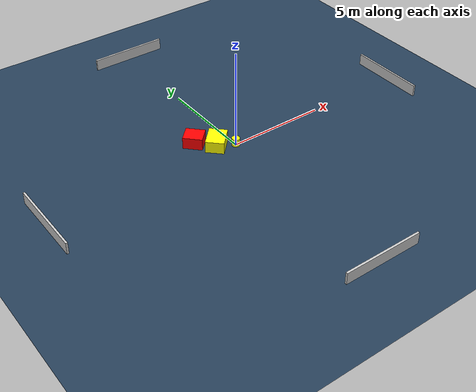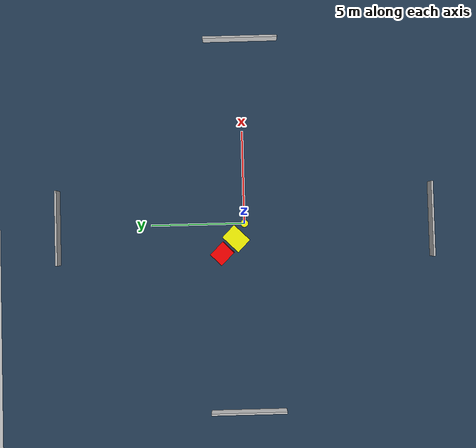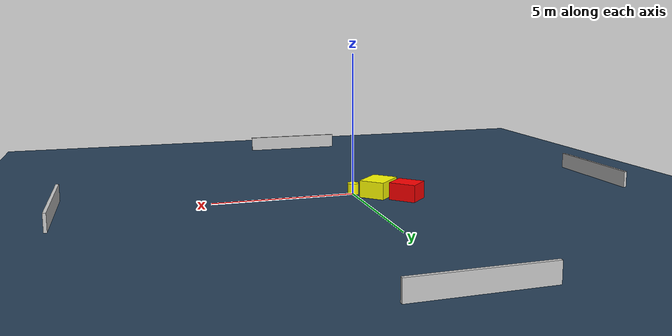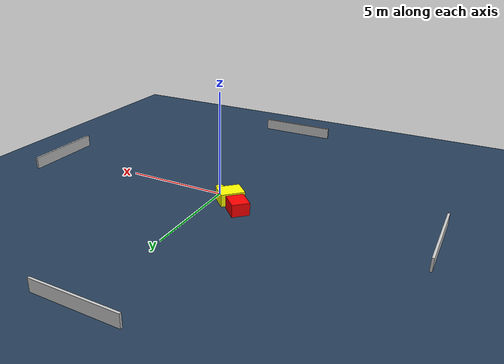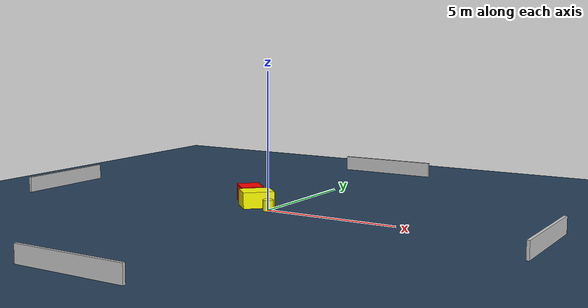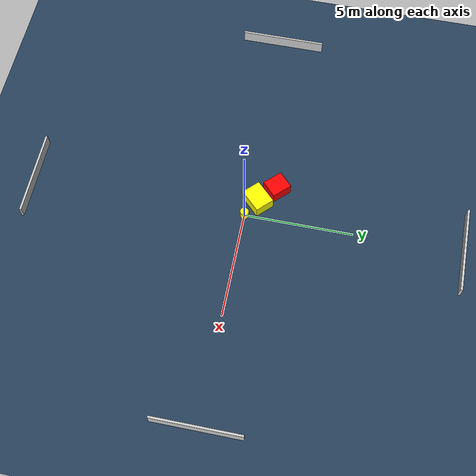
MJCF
<?xml version="1.0" ?>
<mujoco model="generated_environment">
  <option timestep="0.01" integrator="RK4" cone="elliptic"/>
  <default>
    <geom density="1"/>
  </default>
  <asset>
    <texture builtin="gradient" height="3072" name="skybox" rgb1="0.3 0.5 0.7" rgb2="0 0 0" type="skybox" width="512"/>
    <texture builtin="checker" height="300" name="groundplane" rgb1="0.2 0.3 0.4" rgb2="0.1 0.2 0.3" type="2d" width="300"/>
    <material name="groundplane" reflectance="0.2" texrepeat="5 5" texture="groundplane"/>
  </asset>
  <worldbody>
    <light dir="0 0 -1" directional="true" pos="0 0 1.5"/>
    <geom condim="3" friction="0.5 0.005 0.001" material="groundplane" name="floor" pos="0 0 0" size="0 0 0.05" type="plane"/>
    <body name="walls">
      <geom name="wall_1" condim="4" pos="-10.0 0.0 0.3" rgba="0.800000011920929 0.800000011920929 0.800000011920929 1.0" size="0.05 2.0 0.3" type="box"/>
      <geom name="wall_2" condim="4" pos="10.0 0.0 0.3" rgba="0.800000011920929 0.800000011920929 0.800000011920929 1.0" size="0.05 2.0 0.3" type="box"/>
      <geom name="wall_3" condim="4" pos="0.0 -10.0 0.3" rgba="0.800000011920929 0.800000011920929 0.800000011920929 1.0" size="2.0 0.05 0.3" type="box"/>
      <geom name="wall_4" condim="4" pos="0.0 10.0 0.3" rgba="0.800000011920929 0.800000011920929 0.800000011920929 1.0" size="2.0 0.05 0.3" type="box"/>
    </body>
    <body name="robot">
      <joint name="joint_x" type="slide" pos="0 0 0" axis="1 0 0"/>
      <joint name="joint_y" type="slide" pos="0 0 0" axis="0 1 0"/>
      <geom name="robot" type="cylinder" pos="0.0 0.0 0.2" size="0.2 0.2 0.0" mass="5.0" friction="1.0 0.005 0.0001" condim="4" rgba="1.0 1.0 0.0 1.0"/>
    </body>
    <body name="obstacle_1_movable">
      <geom name="obstacle_1_movable" condim="4" pos="-0.802246458179016 0.4592019918008626 0.3" euler="0 0 135.44262487321046" friction="0.0 0.005 0.001" rgba="1.0 1.0 0.0 1.0" size="0.4563044649427872 0.5800337584845862 0.3" type="box" mass="0.1"/>
      <joint type="free"/>
    </body>
    <body name="obstacle_2_static">
      <geom name="obstacle_2_static" condim="4" pos="-1.5797404291346295 1.2184806561461183 0.3" euler="0 0 314.24073905450496" friction="0.0 0.005 0.001" rgba="1.0 0.0 0.0 1.0" size="0.48125565730527214 0.42106099106744743 0.3" type="box"/>
    </body>
  </worldbody>
  <actuator>
    <motor name="actuator_x" joint="joint_x" gear="1" ctrlrange="-1 1"/>
    <motor name="actuator_y" joint="joint_y" gear="1" ctrlrange="-1 1"/>
  </actuator>
</mujoco>
